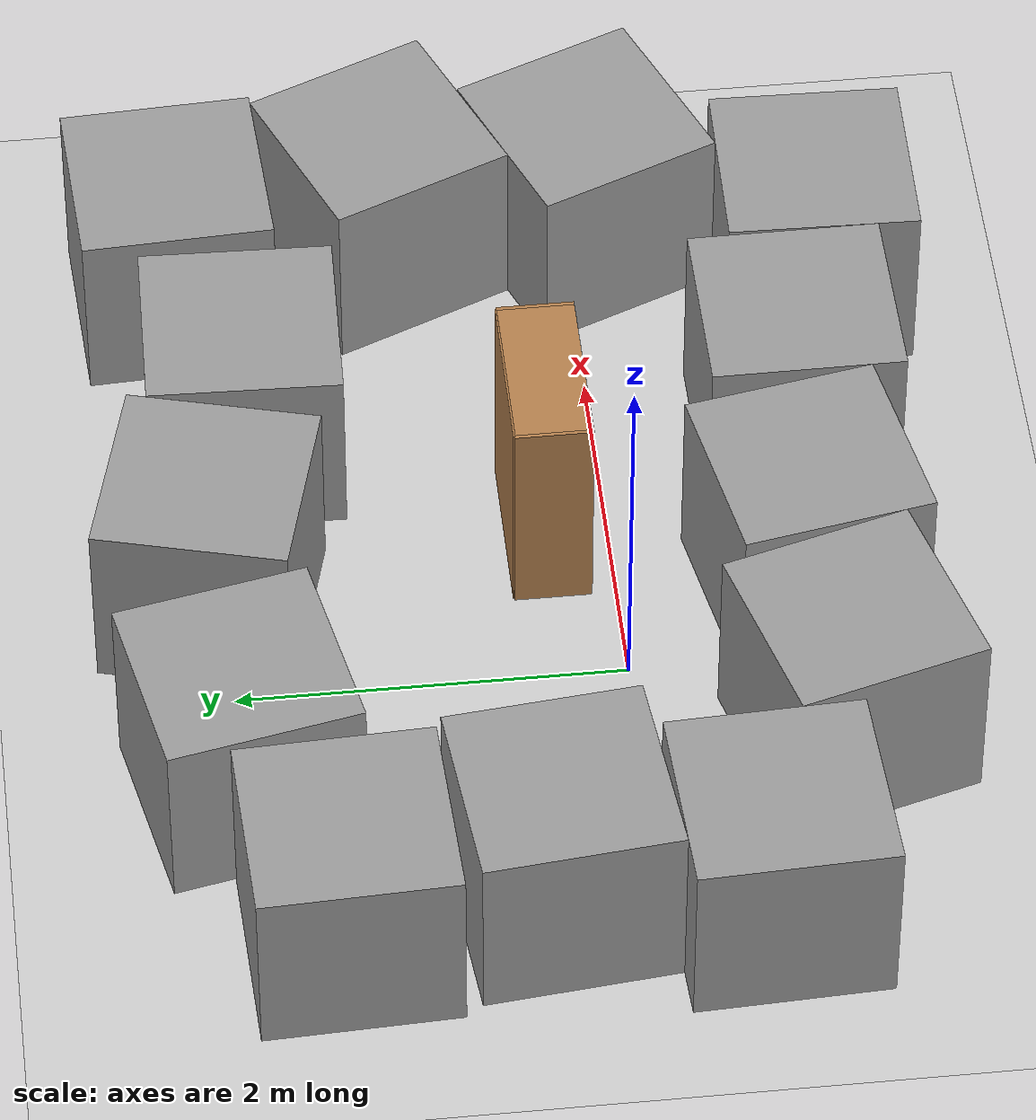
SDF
<sdf version="1.4">
 <world name="default">
  <light name="sun" type="directional">
   <pose>0 0 10 0 -0 0</pose>
   <diffuse>0.8 0.8 0.8 1</diffuse>
   <specular>0.2 0.2 0.2 1</specular>
   <attenuation>
    <range>1000</range>
    <constant>0.9</constant>
    <linear>0.01</linear>
    <quadratic>0.001</quadratic>
   </attenuation>
   <direction>-0.5 0.1 -0.9</direction>
  </light>
  <model name="ground_plane">
   <static>1</static>
   <link name="link">
    <collision name="collision">
     <geometry><plane><normal>0 0 1</normal><size>100 100</size></plane></geometry>
     <surface><friction><ode><mu>100</mu><mu2>50</mu2></ode></friction></surface>
    </collision>
    <visual name="visual">
     <cast_shadows>0</cast_shadows>
     <geometry><plane><normal>0 0 1</normal><size>100 100</size></plane></geometry>
     <material>
      <script><uri>file://media/materials/scripts/gazebo.material</uri><name>Gazebo/Grey</name></script>
     </material>
    </visual>
    <velocity_decay><linear>0</linear><angular>0</angular></velocity_decay>
   </link>
  </model>
  <physics type="ode">
   <max_step_size>0.001</max_step_size>
   <real_time_factor>1</real_time_factor>
   <real_time_update_rate>1000</real_time_update_rate>
   <gravity>0 0 -9.8</gravity>
  </physics>
  <scene><ambient>0.4 0.4 0.4 1</ambient><background>0.7 0.7 0.7 1</background><shadows>1</shadows></scene>
  <spherical_coordinates>
   <surface_model>EARTH_WGS84</surface_model>
   <latitude_deg>0</latitude_deg>
   <longitude_deg>0</longitude_deg>
   <elevation>0</elevation>
   <heading_deg>0</heading_deg>
  </spherical_coordinates>
  <model name="unit_box_1">
   <pose>-0.623688 2.00544 0.5 0 -0 0.20515</pose>
   <link name="link">
    <inertial>
     <mass>1</mass>
     <inertia><ixx>1</ixx><ixy>0</ixy><ixz>0</ixz><iyy>1</iyy><iyz>0</iyz><izz>1</izz></inertia>
    </inertial>
    <collision name="collision"><geometry><box><size>1 1 1</size></box></geometry></collision>
    <visual name="visual">
     <geometry><box><size>1 1 1</size></box></geometry>
     <material>
      <script><uri>file://media/materials/scripts/gazebo.material</uri><name>Gazebo/Grey</name></script>
     </material>
    </visual>
    <velocity_decay><linear>0</linear><angular>0</angular></velocity_decay>
   </link>
   <static>0</static>
  </model>
  <model name="unit_box_2">
   <pose>-0.57448 -1.03936 0.5 0 -0 0.275124</pose>
   <link name="link">
    <inertial>
     <mass>1</mass>
     <inertia><ixx>1</ixx><ixy>0</ixy><ixz>0</ixz><iyy>1</iyy><iyz>0</iyz><izz>1</izz></inertia>
    </inertial>
    <collision name="collision"><geometry><box><size>1 1 1</size></box></geometry></collision>
    <visual name="visual">
     <geometry><box><size>1 1 1</size></box></geometry>
     <material>
      <script><uri>file://media/materials/scripts/gazebo.material</uri><name>Gazebo/Grey</name></script>
     </material>
    </visual>
    <velocity_decay><linear>0</linear><angular>0</angular></velocity_decay>
   </link>
   <static>0</static>
  </model>
  <model name="unit_box_3">
   <pose>-1.52357 0.509496 0.5 0 -0 0.10188</pose>
   <link name="link">
    <inertial>
     <mass>1</mass>
     <inertia><ixx>1</ixx><ixy>0</ixy><ixz>0</ixz><iyy>1</iyy><iyz>0</iyz><izz>1</izz></inertia>
    </inertial>
    <collision name="collision"><geometry><box><size>1 1 1</size></box></geometry></collision>
    <visual name="visual">
     <geometry><box><size>1 1 1</size></box></geometry>
     <material>
      <script><uri>file://media/materials/scripts/gazebo.material</uri><name>Gazebo/Grey</name></script>
     </material>
    </visual>
    <velocity_decay><linear>0</linear><angular>0</angular></velocity_decay>
   </link>
   <static>0</static>
  </model>
  <model name="unit_box_4">
   <pose>-1.65586 1.56314 0.5 0 -0 0.04195</pose>
   <link name="link">
    <inertial>
     <mass>1</mass>
     <inertia><ixx>1</ixx><ixy>0</ixy><ixz>0</ixz><iyy>1</iyy><iyz>0</iyz><izz>1</izz></inertia>
    </inertial>
    <collision name="collision"><geometry><box><size>1 1 1</size></box></geometry></collision>
    <visual name="visual">
     <geometry><box><size>1 1 1</size></box></geometry>
     <material>
      <script><uri>file://media/materials/scripts/gazebo.material</uri><name>Gazebo/Grey</name></script>
     </material>
    </visual>
    <velocity_decay><linear>0</linear><angular>0</angular></velocity_decay>
   </link>
   <static>0</static>
  </model>
  <model name="unit_box_5">
   <pose>-1.69926 -0.527448 0.5 -6.61744e-24 -1e-06 0.043598</pose>
   <link name="link">
    <inertial>
     <mass>1</mass>
     <inertia><ixx>1</ixx><ixy>0</ixy><ixz>0</ixz><iyy>1</iyy><iyz>0</iyz><izz>1</izz></inertia>
    </inertial>
    <collision name="collision"><geometry><box><size>1 1 1</size></box></geometry></collision>
    <visual name="visual">
     <geometry><box><size>1 1 1</size></box></geometry>
     <material>
      <script><uri>file://media/materials/scripts/gazebo.material</uri><name>Gazebo/Grey</name></script>
     </material>
    </visual>
    <velocity_decay><linear>0</linear><angular>0</angular></velocity_decay>
   </link>
   <static>0</static>
  </model>
  <model name="unit_box_6">
   <pose>0.628761 2.06733 0.5 0 0 -0.25281</pose>
   <link name="link">
    <inertial>
     <mass>1</mass>
     <inertia><ixx>1</ixx><ixy>0</ixy><ixz>0</ixz><iyy>1</iyy><iyz>0</iyz><izz>1</izz></inertia>
    </inertial>
    <collision name="collision"><geometry><box><size>1 1 1</size></box></geometry></collision>
    <visual name="visual">
     <geometry><box><size>1 1 1</size></box></geometry>
     <material>
      <script><uri>file://media/materials/scripts/gazebo.material</uri><name>Gazebo/Grey</name></script>
     </material>
    </visual>
    <velocity_decay><linear>0</linear><angular>0</angular></velocity_decay>
   </link>
   <static>0</static>
  </model>
  <model name="unit_box_7">
   <pose>2.8115 2.11307 0.5 0 -0 0.053615</pose>
   <link name="link">
    <inertial>
     <mass>1</mass>
     <inertia><ixx>1</ixx><ixy>0</ixy><ixz>0</ixz><iyy>1</iyy><iyz>0</iyz><izz>1</izz></inertia>
    </inertial>
    <collision name="collision"><geometry><box><size>1 1 1</size></box></geometry></collision>
    <visual name="visual">
     <geometry><box><size>1 1 1</size></box></geometry>
     <material>
      <script><uri>file://media/materials/scripts/gazebo.material</uri><name>Gazebo/Grey</name></script>
     </material>
    </visual>
    <velocity_decay><linear>0</linear><angular>0</angular></velocity_decay>
   </link>
   <static>0</static>
  </model>
  <model name="unit_box_8">
   <pose>1.70413 1.81514 0.5 0 0 -0.026539</pose>
   <link name="link">
    <inertial>
     <mass>1</mass>
     <inertia><ixx>1</ixx><ixy>0</ixy><ixz>0</ixz><iyy>1</iyy><iyz>0</iyz><izz>1</izz></inertia>
    </inertial>
    <collision name="collision"><geometry><box><size>1 1 1</size></box></geometry></collision>
    <visual name="visual">
     <geometry><box><size>1 1 1</size></box></geometry>
     <material>
      <script><uri>file://media/materials/scripts/gazebo.material</uri><name>Gazebo/Grey</name></script>
     </material>
    </visual>
    <velocity_decay><linear>0</linear><angular>0</angular></velocity_decay>
   </link>
   <static>0</static>
  </model>
  <model name="unit_box_9">
   <pose>1.55218 -1.0322 0.5 0 -0 0.006554</pose>
   <link name="link">
    <inertial>
     <mass>1</mass>
     <inertia><ixx>1</ixx><ixy>0</ixy><ixz>0</ixz><iyy>1</iyy><iyz>0</iyz><izz>1</izz></inertia>
    </inertial>
    <collision name="collision"><geometry><box><size>1 1 1</size></box></geometry></collision>
    <visual name="visual">
     <geometry><box><size>1 1 1</size></box></geometry>
     <material>
      <script><uri>file://media/materials/scripts/gazebo.material</uri><name>Gazebo/Grey</name></script>
     </material>
    </visual>
    <velocity_decay><linear>0</linear><angular>0</angular></velocity_decay>
   </link>
   <static>0</static>
  </model>
  <model name="unit_box_10">
   <pose>0.470857 -0.955126 0.5 0 -0 0.184946</pose>
   <link name="link">
    <inertial>
     <mass>1</mass>
     <inertia><ixx>1</ixx><ixy>0</ixy><ixz>0</ixz><iyy>1</iyy><iyz>0</iyz><izz>1</izz></inertia>
    </inertial>
    <collision name="collision"><geometry><box><size>1 1 1</size></box></geometry></collision>
    <visual name="visual">
     <geometry><box><size>1 1 1</size></box></geometry>
     <material>
      <script><uri>file://media/materials/scripts/gazebo.material</uri><name>Gazebo/Grey</name></script>
     </material>
    </visual>
    <velocity_decay><linear>0</linear><angular>0</angular></velocity_decay>
   </link>
   <static>0</static>
  </model>
  <model name="unit_box_1_0">
   <pose>2.56055 -1.25968 0.5 0 0 -0.018551</pose>
   <link name="link">
    <inertial>
     <mass>1</mass>
     <inertia><ixx>1</ixx><ixy>0</ixy><ixz>0</ixz><iyy>1</iyy><iyz>0</iyz><izz>1</izz></inertia>
    </inertial>
    <collision name="collision"><geometry><box><size>1 1 1</size></box></geometry></collision>
    <visual name="visual">
     <geometry><box><size>1 1 1</size></box></geometry>
     <material>
      <script><uri>file://media/materials/scripts/gazebo.material</uri><name>Gazebo/Grey</name></script>
     </material>
    </visual>
    <velocity_decay><linear>0</linear><angular>0</angular></velocity_decay>
   </link>
   <static>0</static>
  </model>
  <model name="unit_box_2_0">
   <pose>3.0264 0.982711 0.5 0 -0 0.400509</pose>
   <link name="link">
    <inertial>
     <mass>1</mass>
     <inertia><ixx>1</ixx><ixy>0</ixy><ixz>0</ixz><iyy>1</iyy><iyz>0</iyz><izz>1</izz></inertia>
    </inertial>
    <collision name="collision"><geometry><box><size>1 1 1</size></box></geometry></collision>
    <visual name="visual">
     <geometry><box><size>1 1 1</size></box></geometry>
     <material>
      <script><uri>file://media/materials/scripts/gazebo.material</uri><name>Gazebo/Grey</name></script>
     </material>
    </visual>
    <velocity_decay><linear>0</linear><angular>0</angular></velocity_decay>
   </link>
   <static>0</static>
  </model>
  <model name="unit_box_3_0">
   <pose>3.01091 -0.110604 0.5 0 -0 0.388983</pose>
   <link name="link">
    <inertial>
     <mass>1</mass>
     <inertia><ixx>1</ixx><ixy>0</ixy><ixz>0</ixz><iyy>1</iyy><iyz>0</iyz><izz>1</izz></inertia>
    </inertial>
    <collision name="collision"><geometry><box><size>1 1 1</size></box></geometry></collision>
    <visual name="visual">
     <geometry><box><size>1 1 1</size></box></geometry>
     <material>
      <script><uri>file://media/materials/scripts/gazebo.material</uri><name>Gazebo/Grey</name></script>
     </material>
    </visual>
    <velocity_decay><linear>0</linear><angular>0</angular></velocity_decay>
   </link>
   <static>0</static>
  </model>
  <model name="bookshelf">
   <static>1</static>
   <link name="link">
    <inertial><mass>1</mass></inertial>
    <collision name="back">
     <pose>0 0.005 0.6 0 -0 0</pose>
     <geometry><box><size>0.9 0.01 1.2</size></box></geometry>
    </collision>
    <visual name="visual1">
     <pose>0 0.005 0.6 0 -0 0</pose>
     <geometry><box><size>0.9 0.01 1.2</size></box></geometry>
     <material>
      <script><uri>file://media/materials/scripts/gazebo.material</uri><name>Gazebo/Wood</name></script>
     </material>
    </visual>
    <collision name="left_side">
     <pose>0.45 -0.195 0.6 0 -0 0</pose>
     <geometry><box><size>0.02 0.4 1.2</size></box></geometry>
    </collision>
    <visual name="visual2">
     <pose>0.45 -0.195 0.6 0 -0 0</pose>
     <geometry><box><size>0.02 0.4 1.2</size></box></geometry>
     <material>
      <script><uri>file://media/materials/scripts/gazebo.material</uri><name>Gazebo/Wood</name></script>
     </material>
    </visual>
    <collision name="right_side">
     <pose>-0.45 -0.195 0.6 0 -0 0</pose>
     <geometry><box><size>0.02 0.4 1.2</size></box></geometry>
    </collision>
    <visual name="visual3">
     <pose>-0.45 -0.195 0.6 0 -0 0</pose>
     <geometry><box><size>0.02 0.4 1.2</size></box></geometry>
     <material>
      <script><uri>file://media/materials/scripts/gazebo.material</uri><name>Gazebo/Wood</name></script>
     </material>
    </visual>
    <collision name="bottom">
     <pose>0 -0.195 0.03 0 -0 0</pose>
     <geometry><box><size>0.88 0.4 0.06</size></box></geometry>
    </collision>
    <visual name="visual4">
     <pose>0 -0.195 0.03 0 -0 0</pose>
     <geometry><box><size>0.88 0.4 0.06</size></box></geometry>
     <material>
      <script><uri>file://media/materials/scripts/gazebo.material</uri><name>Gazebo/Wood</name></script>
     </material>
    </visual>
    <collision name="top">
     <pose>0 -0.195 1.19 0 -0 0</pose>
     <geometry><box><size>0.88 0.4 0.02</size></box></geometry>
    </collision>
    <visual name="visual5">
     <pose>0 -0.195 1.19 0 -0 0</pose>
     <geometry><box><size>0.88 0.4 0.02</size></box></geometry>
     <material>
      <script><uri>file://media/materials/scripts/gazebo.material</uri><name>Gazebo/Wood</name></script>
     </material>
    </visual>
    <collision name="low_shelf">
     <pose>0 -0.195 0.43 0 -0 0</pose>
     <geometry><box><size>0.88 0.4 0.02</size></box></geometry>
    </collision>
    <visual name="visual6">
     <pose>0 -0.195 0.43 0 -0 0</pose>
     <geometry><box><size>0.88 0.4 0.02</size></box></geometry>
     <material>
      <script><uri>file://media/materials/scripts/gazebo.material</uri><name>Gazebo/Wood</name></script>
     </material>
    </visual>
    <collision name="high_shelf">
     <pose>0 -0.195 0.8 0 -0 0</pose>
     <geometry><box><size>0.88 0.4 0.02</size></box></geometry>
    </collision>
    <visual name="visual7">
     <pose>0 -0.195 0.8 0 -0 0</pose>
     <geometry><box><size>0.88 0.4 0.02</size></box></geometry>
     <material>
      <script><uri>file://media/materials/scripts/gazebo.material</uri><name>Gazebo/Wood</name></script>
     </material>
    </visual>
    <velocity_decay><linear>0</linear><angular>0</angular></velocity_decay>
   </link>
   <pose>1 0.521854 0 0 -0 0</pose>
  </model>
 </world>
</sdf>
